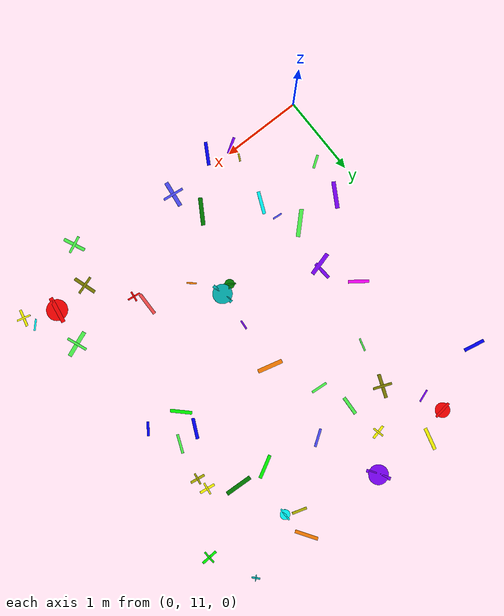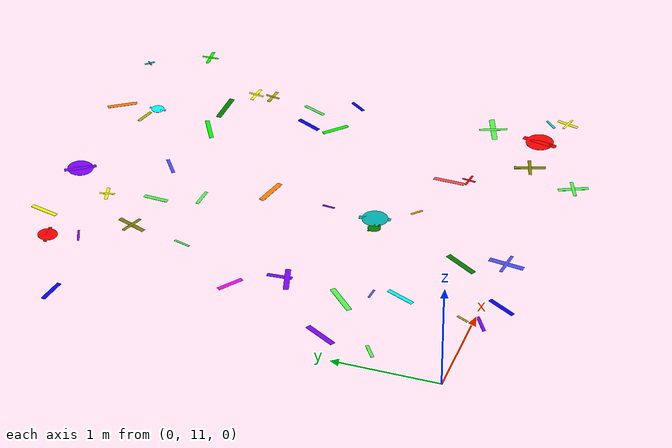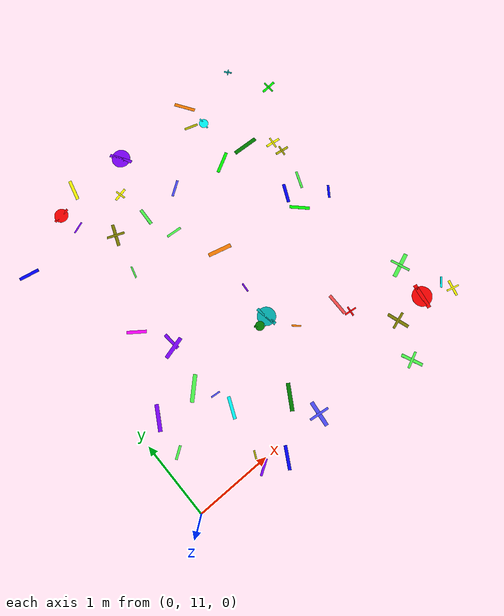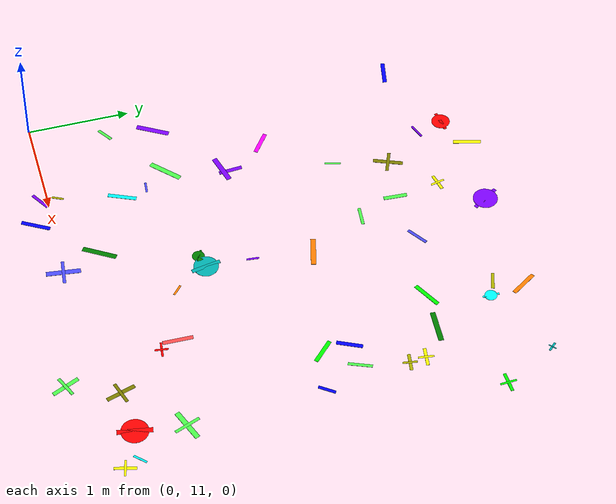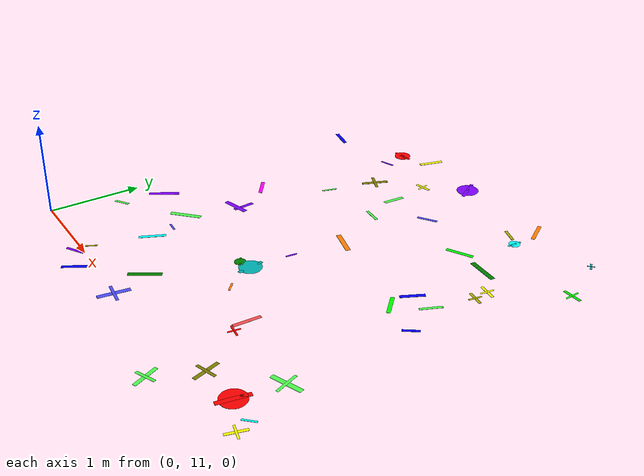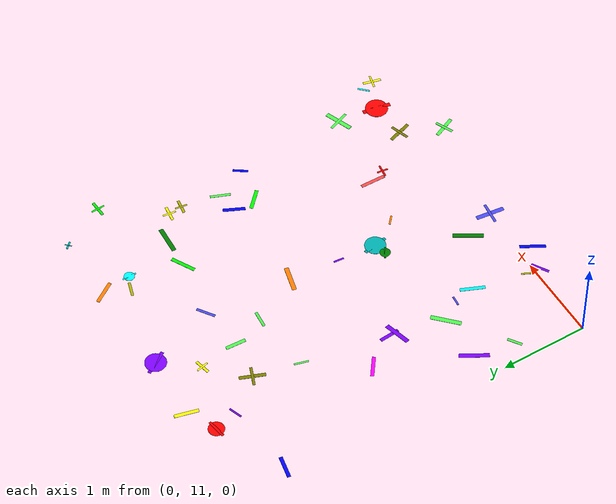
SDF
<sdf version="1.6">
 <world name="default">
  <model name="letter_R_1184">
   <static>true</static>
   <pose>0.23 11.72 0.005 0 0 3.740</pose>
   <link name="link">
    <visual name="visual">
     <geometry><box><size>0.17 0.03 0.002</size></box></geometry>
     <material>
      <ambient>0.3 1.0 0.3 1</ambient>
      <diffuse>0.3 1.0 0.3 1</diffuse>
      <specular>0.1 0.1 0.1 1</specular>
     </material>
    </visual>
   </link>
  </model>
  <model name="letter_K_1185">
   <static>true</static>
   <pose>0.30 12.19 0.012 0 0 1.046</pose>
   <link name="link">
    <visual name="visual">
     <geometry><box><size>0.33 0.05 0.002</size></box></geometry>
     <material>
      <ambient>0.5 0.0 1.0 1</ambient>
      <diffuse>0.5 0.0 1.0 1</diffuse>
      <specular>0.1 0.1 0.1 1</specular>
     </material>
    </visual>
   </link>
  </model>
  <model name="letter_R_1191">
   <static>true</static>
   <pose>0.14 14.63 0.005 0 0 2.949</pose>
   <link name="link">
    <visual name="visual">
     <geometry><box><size>0.26 0.04 0.002</size></box></geometry>
     <material>
      <ambient>0.0 0.0 1.0 1</ambient>
      <diffuse>0.0 0.0 1.0 1</diffuse>
      <specular>0.1 0.1 0.1 1</specular>
     </material>
    </visual>
   </link>
  </model>
  <model name="letter_S_1237">
   <static>true</static>
   <pose>0.91 10.93 0.006 0 0 0.553</pose>
   <link name="link">
    <visual name="visual">
     <geometry><box><size>0.21 0.03 0.002</size></box></geometry>
     <material>
      <ambient>0.5 0.0 1.0 1</ambient>
      <diffuse>0.5 0.0 1.0 1</diffuse>
      <specular>0.1 0.1 0.1 1</specular>
     </material>
    </visual>
   </link>
  </model>
  <model name="letter_W_1238">
   <static>true</static>
   <pose>1.20 10.83 0.005 0 0 1.048</pose>
   <link name="link">
    <visual name="visual">
     <geometry><box><size>0.29 0.04 0.002</size></box></geometry>
     <material>
      <ambient>0.0 0.0 1.0 1</ambient>
      <diffuse>0.0 0.0 1.0 1</diffuse>
      <specular>0.1 0.1 0.1 1</specular>
     </material>
    </visual>
   </link>
  </model>
  <model name="letter_B_1239">
   <static>true</static>
   <pose>0.92 11.10 0.012 0 0 4.268</pose>
   <link name="link">
    <visual name="visual">
     <geometry><box><size>0.12 0.02 0.002</size></box></geometry>
     <material>
      <ambient>0.7 0.7 0.0 1</ambient>
      <diffuse>0.7 0.7 0.0 1</diffuse>
      <specular>0.1 0.1 0.1 1</specular>
     </material>
    </visual>
   </link>
  </model>
  <model name="letter_Y_1240">
   <static>true</static>
   <pose>1.06 11.71 0.004 0 0 1.162</pose>
   <link name="link">
    <visual name="visual">
     <geometry><box><size>0.28 0.04 0.002</size></box></geometry>
     <material>
      <ambient>0.0 1.0 1.0 1</ambient>
      <diffuse>0.0 1.0 1.0 1</diffuse>
      <specular>0.1 0.1 0.1 1</specular>
     </material>
    </visual>
   </link>
  </model>
  <model name="letter_W_1241">
   <static>true</static>
   <pose>0.85 12.19 0.008 0 0 0.771</pose>
   <link name="link">
    <visual name="visual">
     <geometry><box><size>0.34 0.05 0.002</size></box></geometry>
     <material>
      <ambient>0.3 1.0 0.3 1</ambient>
      <diffuse>0.3 1.0 0.3 1</diffuse>
      <specular>0.1 0.1 0.1 1</specular>
     </material>
    </visual>
   </link>
  </model>
  <model name="letter_W_1242">
   <static>true</static>
   <pose>1.01 11.96 0.012 0 0 3.045</pose>
   <link name="link">
    <visual name="visual">
     <geometry><box><size>0.12 0.02 0.002</size></box></geometry>
     <material>
      <ambient>0.3 0.3 1.0 1</ambient>
      <diffuse>0.3 0.3 1.0 1</diffuse>
      <specular>0.1 0.1 0.1 1</specular>
     </material>
    </visual>
   </link>
  </model>
  <model name="letter_U_1243">
   <static>true</static>
   <pose>0.74 13.18 0.011 0 0 5.647</pose>
   <link name="link">
    <visual name="visual">
     <geometry><box><size>0.25 0.04 0.002</size></box></geometry>
     <material>
      <ambient>1.0 0.0 1.0 1</ambient>
      <diffuse>1.0 0.0 1.0 1</diffuse>
      <specular>0.1 0.1 0.1 1</specular>
     </material>
    </visual>
   </link>
  </model>
  <model name="letter_R_1244">
   <static>true</static>
   <pose>1.00 12.81 0.003 0 0 1.650</pose>
   <link name="link">
    <visual name="visual">
     <geometry><box><size>0.23 0.04 0.002</size></box></geometry>
     <material>
      <ambient>0.5 0.0 1.0 1</ambient>
      <diffuse>0.5 0.0 1.0 1</diffuse>
      <specular>0.1 0.1 0.1 1</specular>
     </material>
    </visual>
   </link>
  </model>
  <model name="letter_B_1245">
   <static>true</static>
   <pose>0.97 12.73 0.010 0 0 3.407</pose>
   <link name="link">
    <visual name="visual">
     <geometry><box><size>0.30 0.05 0.002</size></box></geometry>
     <material>
      <ambient>0.5 0.0 1.0 1</ambient>
      <diffuse>0.5 0.0 1.0 1</diffuse>
      <specular>0.1 0.1 0.1 1</specular>
     </material>
    </visual>
   </link>
  </model>
  <model name="letter_P_1246">
   <static>true</static>
   <pose>1.18 13.80 0.009 0 0 1.302</pose>
   <link name="link">
    <visual name="visual">
     <geometry><box><size>0.16 0.02 0.002</size></box></geometry>
     <material>
      <ambient>0.3 1.0 0.3 1</ambient>
      <diffuse>0.3 1.0 0.3 1</diffuse>
      <specular>0.1 0.1 0.1 1</specular>
     </material>
    </visual>
   </link>
  </model>
  <model name="letter_L_1247">
   <static>true</static>
   <pose>1.30 14.33 0.007 0 0 1.194</pose>
   <link name="link">
    <visual name="visual">
     <geometry><box><size>0.29 0.04 0.002</size></box></geometry>
     <material>
      <ambient>0.5 0.5 0.0 1</ambient>
      <diffuse>0.5 0.5 0.0 1</diffuse>
      <specular>0.1 0.1 0.1 1</specular>
     </material>
    </visual>
    <visual name="visual2">
     <pose>0 0 0.001 0 0 1.57</pose>
     <geometry><box><size>0.23 0.03 0.001</size></box></geometry>
     <material><ambient>0.5 0.5 0.0 1</ambient><diffuse>0.5 0.5 0.0 1</diffuse></material>
    </visual>
   </link>
  </model>
  <model name="letter_U_1248">
   <static>true</static>
   <pose>1.25 15.16 0.008 0 0 4.463</pose>
   <link name="link">
    <visual name="visual">
     <geometry><box><size>0.27 0.04 0.002</size></box></geometry>
     <material>
      <ambient>1.0 1.0 0.0 1</ambient>
      <diffuse>1.0 1.0 0.0 1</diffuse>
      <specular>0.1 0.1 0.1 1</specular>
     </material>
    </visual>
   </link>
  </model>
  <model name="letter_J_1249">
   <static>true</static>
   <pose>0.99 14.72 0.008 0 0 3.491</pose>
   <link name="link">
    <visual name="visual">
     <geometry><box><size>0.16 0.02 0.002</size></box></geometry>
     <material>
      <ambient>0.5 0.0 1.0 1</ambient>
      <diffuse>0.5 0.0 1.0 1</diffuse>
      <specular>0.1 0.1 0.1 1</specular>
     </material>
    </visual>
   </link>
  </model>
  <model name="letter_O_1250">
   <static>true</static>
   <pose>0.92 14.99 0.004 0 0 3.297</pose>
   <link name="link">
    <visual name="visual">
     <geometry><box><size>0.22 0.03 0.002</size></box></geometry>
     <material>
      <ambient>1.0 0.0 0.0 1</ambient>
      <diffuse>1.0 0.0 0.0 1</diffuse>
      <specular>0.1 0.1 0.1 1</specular>
     </material>
    </visual>
    <visual name="visual2">
     <geometry><cylinder><radius>0.09</radius><length>0.002</length></cylinder></geometry>
     <material><ambient>1.0 0.0 0.0 1</ambient><diffuse>1.0 0.0 0.0 1</diffuse></material>
    </visual>
   </link>
  </model>
  <model name="letter_H_1302">
   <static>true</static>
   <pose>1.83 10.97 0.004 0 0 1.450</pose>
   <link name="link">
    <visual name="visual">
     <geometry><box><size>0.33 0.05 0.002</size></box></geometry>
     <material>
      <ambient>0.3 0.3 1.0 1</ambient>
      <diffuse>0.3 0.3 1.0 1</diffuse>
      <specular>0.1 0.1 0.1 1</specular>
     </material>
    </visual>
    <visual name="visual2">
     <pose>0 0 0.001 0 0 1.57</pose>
     <geometry><box><size>0.26 0.03 0.001</size></box></geometry>
     <material><ambient>0.3 0.3 1.0 1</ambient><diffuse>0.3 0.3 1.0 1</diffuse></material>
    </visual>
   </link>
  </model>
  <model name="letter_U_1303">
   <static>true</static>
   <pose>1.69 11.35 0.009 0 0 4.161</pose>
   <link name="link">
    <visual name="visual">
     <geometry><box><size>0.34 0.05 0.002</size></box></geometry>
     <material>
      <ambient>0.0 0.5 0.0 1</ambient>
      <diffuse>0.0 0.5 0.0 1</diffuse>
      <specular>0.1 0.1 0.1 1</specular>
     </material>
    </visual>
   </link>
  </model>
  <model name="letter_Q_1304">
   <static>true</static>
   <pose>2.11 12.29 0.006 0 0 1.752</pose>
   <link name="link">
    <visual name="visual">
     <geometry><box><size>0.29 0.04 0.002</size></box></geometry>
     <material>
      <ambient>0.0 0.7 0.7 1</ambient>
      <diffuse>0.0 0.7 0.7 1</diffuse>
      <specular>0.1 0.1 0.1 1</specular>
     </material>
    </visual>
    <visual name="visual2">
     <geometry><cylinder><radius>0.12</radius><length>0.002</length></cylinder></geometry>
     <material><ambient>0.0 0.7 0.7 1</ambient><diffuse>0.0 0.7 0.7 1</diffuse></material>
    </visual>
   </link>
  </model>
  <model name="letter_O_1305">
   <static>true</static>
   <pose>1.97 12.25 0.006 0 0 5.721</pose>
   <link name="link">
    <visual name="visual">
     <geometry><box><size>0.15 0.02 0.002</size></box></geometry>
     <material>
      <ambient>0.0 0.5 0.0 1</ambient>
      <diffuse>0.0 0.5 0.0 1</diffuse>
      <specular>0.1 0.1 0.1 1</specular>
     </material>
    </visual>
    <visual name="visual2">
     <geometry><cylinder><radius>0.06</radius><length>0.002</length></cylinder></geometry>
     <material><ambient>0.0 0.5 0.0 1</ambient><diffuse>0.0 0.5 0.0 1</diffuse></material>
    </visual>
   </link>
  </model>
  <model name="letter_K_1306">
   <static>true</static>
   <pose>2.32 11.96 0.009 0 0 2.410</pose>
   <link name="link">
    <visual name="visual">
     <geometry><box><size>0.12 0.02 0.002</size></box></geometry>
     <material>
      <ambient>1.0 0.5 0.0 1</ambient>
      <diffuse>1.0 0.5 0.0 1</diffuse>
      <specular>0.1 0.1 0.1 1</specular>
     </material>
    </visual>
   </link>
  </model>
  <model name="letter_P_1307">
   <static>true</static>
   <pose>2.14 12.74 0.013 0 0 1.482</pose>
   <link name="link">
    <visual name="visual">
     <geometry><box><size>0.12 0.02 0.002</size></box></geometry>
     <material>
      <ambient>0.5 0.0 1.0 1</ambient>
      <diffuse>0.5 0.0 1.0 1</diffuse>
      <specular>0.1 0.1 0.1 1</specular>
     </material>
    </visual>
   </link>
  </model>
  <model name="letter_U_1308">
   <static>true</static>
   <pose>2.20 13.32 0.005 0 0 2.891</pose>
   <link name="link">
    <visual name="visual">
     <geometry><box><size>0.31 0.05 0.002</size></box></geometry>
     <material>
      <ambient>1.0 0.5 0.0 1</ambient>
      <diffuse>1.0 0.5 0.0 1</diffuse>
      <specular>0.1 0.1 0.1 1</specular>
     </material>
    </visual>
   </link>
  </model>
  <model name="letter_B_1309">
   <static>true</static>
   <pose>1.75 14.27 0.012 0 0 4.661</pose>
   <link name="link">
    <visual name="visual">
     <geometry><box><size>0.23 0.04 0.002</size></box></geometry>
     <material>
      <ambient>0.3 1.0 0.3 1</ambient>
      <diffuse>0.3 1.0 0.3 1</diffuse>
      <specular>0.1 0.1 0.1 1</specular>
     </material>
    </visual>
   </link>
  </model>
  <model name="letter_D_1310">
   <static>true</static>
   <pose>1.90 13.88 0.010 0 0 6.199</pose>
   <link name="link">
    <visual name="visual">
     <geometry><box><size>0.20 0.03 0.002</size></box></geometry>
     <material>
      <ambient>0.3 1.0 0.3 1</ambient>
      <diffuse>0.3 1.0 0.3 1</diffuse>
      <specular>0.1 0.1 0.1 1</specular>
     </material>
    </visual>
   </link>
  </model>
  <model name="letter_K_1311">
   <static>true</static>
   <pose>2.28 14.33 0.011 0 0 3.743</pose>
   <link name="link">
    <visual name="visual">
     <geometry><box><size>0.22 0.03 0.002</size></box></geometry>
     <material>
      <ambient>0.3 0.3 1.0 1</ambient>
      <diffuse>0.3 0.3 1.0 1</diffuse>
      <specular>0.1 0.1 0.1 1</specular>
     </material>
    </visual>
   </link>
  </model>
  <model name="letter_H_1312">
   <static>true</static>
   <pose>1.68 14.72 0.010 0 0 3.371</pose>
   <link name="link">
    <visual name="visual">
     <geometry><box><size>0.18 0.03 0.002</size></box></geometry>
     <material>
      <ambient>1.0 1.0 0.0 1</ambient>
      <diffuse>1.0 1.0 0.0 1</diffuse>
      <specular>0.1 0.1 0.1 1</specular>
     </material>
    </visual>
    <visual name="visual2">
     <pose>0 0 0.001 0 0 1.57</pose>
     <geometry><box><size>0.14 0.02 0.001</size></box></geometry>
     <material><ambient>1.0 1.0 0.0 1</ambient><diffuse>1.0 1.0 0.0 1</diffuse></material>
    </visual>
   </link>
  </model>
  <model name="letter_Q_1313">
   <static>true</static>
   <pose>1.99 15.11 0.003 0 0 5.284</pose>
   <link name="link">
    <visual name="visual">
     <geometry><box><size>0.30 0.04 0.002</size></box></geometry>
     <material>
      <ambient>0.5 0.0 1.0 1</ambient>
      <diffuse>0.5 0.0 1.0 1</diffuse>
      <specular>0.1 0.1 0.1 1</specular>
     </material>
    </visual>
    <visual name="visual2">
     <geometry><cylinder><radius>0.12</radius><length>0.002</length></cylinder></geometry>
     <material><ambient>0.5 0.0 1.0 1</ambient><diffuse>0.5 0.0 1.0 1</diffuse></material>
    </visual>
   </link>
  </model>
  <model name="letter_A_1374">
   <static>true</static>
   <pose>3.14 10.72 0.008 0 0 1.993</pose>
   <link name="link">
    <visual name="visual">
     <geometry><box><size>0.28 0.04 0.002</size></box></geometry>
     <material>
      <ambient>0.3 1.0 0.3 1</ambient>
      <diffuse>0.3 1.0 0.3 1</diffuse>
      <specular>0.1 0.1 0.1 1</specular>
     </material>
    </visual>
    <visual name="visual2">
     <pose>0 0 0.001 0 0 1.57</pose>
     <geometry><box><size>0.22 0.03 0.001</size></box></geometry>
     <material><ambient>0.3 1.0 0.3 1</ambient><diffuse>0.3 1.0 0.3 1</diffuse></material>
    </visual>
   </link>
  </model>
  <model name="letter_L_1375">
   <static>true</static>
   <pose>3.34 11.19 0.009 0 0 1.886</pose>
   <link name="link">
    <visual name="visual">
     <geometry><box><size>0.29 0.04 0.002</size></box></geometry>
     <material>
      <ambient>0.5 0.5 0.0 1</ambient>
      <diffuse>0.5 0.5 0.0 1</diffuse>
      <specular>0.1 0.1 0.1 1</specular>
     </material>
    </visual>
    <visual name="visual2">
     <pose>0 0 0.001 0 0 1.57</pose>
     <geometry><box><size>0.23 0.03 0.001</size></box></geometry>
     <material><ambient>0.5 0.5 0.0 1</ambient><diffuse>0.5 0.5 0.0 1</diffuse></material>
    </visual>
   </link>
  </model>
  <model name="letter_Z_1376">
   <static>true</static>
   <pose>2.89 11.83 0.008 0 0 4.696</pose>
   <link name="link">
    <visual name="visual">
     <geometry><box><size>0.29 0.04 0.002</size></box></geometry>
     <material>
      <ambient>1.0 0.3 0.3 1</ambient>
      <diffuse>1.0 0.3 0.3 1</diffuse>
      <specular>0.1 0.1 0.1 1</specular>
     </material>
    </visual>
   </link>
  </model>
  <model name="letter_L_1377">
   <static>true</static>
   <pose>2.96 11.66 0.010 0 0 3.016</pose>
   <link name="link">
    <visual name="visual">
     <geometry><box><size>0.16 0.02 0.002</size></box></geometry>
     <material>
      <ambient>1.0 0.0 0.0 1</ambient>
      <diffuse>1.0 0.0 0.0 1</diffuse>
      <specular>0.1 0.1 0.1 1</specular>
     </material>
    </visual>
    <visual name="visual2">
     <pose>0 0 0.001 0 0 1.57</pose>
     <geometry><box><size>0.13 0.02 0.001</size></box></geometry>
     <material><ambient>1.0 0.0 0.0 1</ambient><diffuse>1.0 0.0 0.0 1</diffuse></material>
    </visual>
   </link>
  </model>
  <model name="letter_K_1378">
   <static>true</static>
   <pose>3.36 13.09 0.005 0 0 2.369</pose>
   <link name="link">
    <visual name="visual">
     <geometry><box><size>0.26 0.04 0.002</size></box></geometry>
     <material>
      <ambient>0.0 1.0 0.0 1</ambient>
      <diffuse>0.0 1.0 0.0 1</diffuse>
      <specular>0.1 0.1 0.1 1</specular>
     </material>
    </visual>
   </link>
  </model>
  <model name="letter_K_1379">
   <static>true</static>
   <pose>3.35 13.35 0.008 0 0 1.130</pose>
   <link name="link">
    <visual name="visual">
     <geometry><box><size>0.25 0.04 0.002</size></box></geometry>
     <material>
      <ambient>0.0 0.0 1.0 1</ambient>
      <diffuse>0.0 0.0 1.0 1</diffuse>
      <specular>0.1 0.1 0.1 1</specular>
     </material>
    </visual>
   </link>
  </model>
  <model name="letter_D_1380">
   <static>true</static>
   <pose>3.36 14.19 0.008 0 0 6.232</pose>
   <link name="link">
    <visual name="visual">
     <geometry><box><size>0.33 0.05 0.002</size></box></geometry>
     <material>
      <ambient>0.0 0.5 0.0 1</ambient>
      <diffuse>0.0 0.5 0.0 1</diffuse>
      <specular>0.1 0.1 0.1 1</specular>
     </material>
    </visual>
   </link>
  </model>
  <model name="letter_N_1381">
   <static>true</static>
   <pose>2.98 14.21 0.004 0 0 0.496</pose>
   <link name="link">
    <visual name="visual">
     <geometry><box><size>0.29 0.04 0.002</size></box></geometry>
     <material>
      <ambient>0.0 1.0 0.0 1</ambient>
      <diffuse>0.0 1.0 0.0 1</diffuse>
      <specular>0.1 0.1 0.1 1</specular>
     </material>
    </visual>
   </link>
  </model>
  <model name="letter_G_1382">
   <static>true</static>
   <pose>3.14 14.79 0.007 0 0 4.703</pose>
   <link name="link">
    <visual name="visual">
     <geometry><box><size>0.16 0.02 0.002</size></box></geometry>
     <material>
      <ambient>0.0 1.0 1.0 1</ambient>
      <diffuse>0.0 1.0 1.0 1</diffuse>
      <specular>0.1 0.1 0.1 1</specular>
     </material>
    </visual>
    <visual name="visual2">
     <geometry><cylinder><radius>0.06</radius><length>0.002</length></cylinder></geometry>
     <material><ambient>0.0 1.0 1.0 1</ambient><diffuse>0.0 1.0 1.0 1</diffuse></material>
    </visual>
   </link>
  </model>
  <model name="letter_Y_1383">
   <static>true</static>
   <pose>3.09 15.13 0.009 0 0 2.153</pose>
   <link name="link">
    <visual name="visual">
     <geometry><box><size>0.28 0.04 0.002</size></box></geometry>
     <material>
      <ambient>1.0 0.5 0.0 1</ambient>
      <diffuse>1.0 0.5 0.0 1</diffuse>
      <specular>0.1 0.1 0.1 1</specular>
     </material>
    </visual>
   </link>
  </model>
  <model name="letter_U_1384">
   <static>true</static>
   <pose>2.98 14.86 0.006 0 0 5.982</pose>
   <link name="link">
    <visual name="visual">
     <geometry><box><size>0.18 0.03 0.002</size></box></geometry>
     <material>
      <ambient>0.7 0.7 0.0 1</ambient>
      <diffuse>0.7 0.7 0.0 1</diffuse>
      <specular>0.1 0.1 0.1 1</specular>
     </material>
    </visual>
   </link>
  </model>
  <model name="letter_Q_1448">
   <static>true</static>
   <pose>3.78 11.22 0.006 0 0 1.406</pose>
   <link name="link">
    <visual name="visual">
     <geometry><box><size>0.33 0.05 0.002</size></box></geometry>
     <material>
      <ambient>1.0 0.0 0.0 1</ambient>
      <diffuse>1.0 0.0 0.0 1</diffuse>
      <specular>0.1 0.1 0.1 1</specular>
     </material>
    </visual>
    <visual name="visual2">
     <geometry><cylinder><radius>0.13</radius><length>0.002</length></cylinder></geometry>
     <material><ambient>1.0 0.0 0.0 1</ambient><diffuse>1.0 0.0 0.0 1</diffuse></material>
    </visual>
   </link>
  </model>
  <model name="letter_R_1449">
   <static>true</static>
   <pose>4.09 11.20 0.012 0 0 0.806</pose>
   <link name="link">
    <visual name="visual">
     <geometry><box><size>0.14 0.02 0.002</size></box></geometry>
     <material>
      <ambient>0.0 1.0 1.0 1</ambient>
      <diffuse>0.0 1.0 1.0 1</diffuse>
      <specular>0.1 0.1 0.1 1</specular>
     </material>
    </visual>
   </link>
  </model>
  <model name="letter_H_1450">
   <static>true</static>
   <pose>4.15 11.05 0.009 0 0 4.462</pose>
   <link name="link">
    <visual name="visual">
     <geometry><box><size>0.21 0.03 0.002</size></box></geometry>
     <material>
      <ambient>1.0 1.0 0.0 1</ambient>
      <diffuse>1.0 1.0 0.0 1</diffuse>
      <specular>0.1 0.1 0.1 1</specular>
     </material>
    </visual>
    <visual name="visual2">
     <pose>0 0 0.001 0 0 1.57</pose>
     <geometry><box><size>0.17 0.02 0.001</size></box></geometry>
     <material><ambient>1.0 1.0 0.0 1</ambient><diffuse>1.0 1.0 0.0 1</diffuse></material>
    </visual>
   </link>
  </model>
  <model name="letter_A_1452">
   <static>true</static>
   <pose>3.84 11.69 0.006 0 0 3.514</pose>
   <link name="link">
    <visual name="visual">
     <geometry><box><size>0.33 0.05 0.002</size></box></geometry>
     <material>
      <ambient>0.3 1.0 0.3 1</ambient>
      <diffuse>0.3 1.0 0.3 1</diffuse>
      <specular>0.1 0.1 0.1 1</specular>
     </material>
    </visual>
    <visual name="visual2">
     <pose>0 0 0.001 0 0 1.57</pose>
     <geometry><box><size>0.26 0.03 0.001</size></box></geometry>
     <material><ambient>0.3 1.0 0.3 1</ambient><diffuse>0.3 1.0 0.3 1</diffuse></material>
    </visual>
   </link>
  </model>
  <model name="letter_M_1453">
   <static>true</static>
   <pose>3.60 13.38 0.008 0 0 1.187</pose>
   <link name="link">
    <visual name="visual">
     <geometry><box><size>0.23 0.03 0.002</size></box></geometry>
     <material>
      <ambient>0.3 1.0 0.3 1</ambient>
      <diffuse>0.3 1.0 0.3 1</diffuse>
      <specular>0.1 0.1 0.1 1</specular>
     </material>
    </visual>
   </link>
  </model>
  <model name="letter_B_1454">
   <static>true</static>
   <pose>3.79 13.01 0.010 0 0 0.951</pose>
   <link name="link">
    <visual name="visual">
     <geometry><box><size>0.17 0.03 0.002</size></box></geometry>
     <material>
      <ambient>0.0 0.0 1.0 1</ambient>
      <diffuse>0.0 0.0 1.0 1</diffuse>
      <specular>0.1 0.1 0.1 1</specular>
     </material>
    </visual>
   </link>
  </model>
  <model name="letter_A_1455">
   <static>true</static>
   <pose>3.69 13.83 0.008 0 0 6.140</pose>
   <link name="link">
    <visual name="visual">
     <geometry><box><size>0.18 0.03 0.002</size></box></geometry>
     <material>
      <ambient>0.7 0.7 0.0 1</ambient>
      <diffuse>0.7 0.7 0.0 1</diffuse>
      <specular>0.1 0.1 0.1 1</specular>
     </material>
    </visual>
    <visual name="visual2">
     <pose>0 0 0.001 0 0 1.57</pose>
     <geometry><box><size>0.14 0.02 0.001</size></box></geometry>
     <material><ambient>0.7 0.7 0.0 1</ambient><diffuse>0.7 0.7 0.0 1</diffuse></material>
    </visual>
   </link>
  </model>
  <model name="letter_I_1456">
   <static>true</static>
   <pose>3.67 13.99 0.011 0 0 3.016</pose>
   <link name="link">
    <visual name="visual">
     <geometry><box><size>0.19 0.03 0.002</size></box></geometry>
     <material>
      <ambient>1.0 1.0 0.0 1</ambient>
      <diffuse>1.0 1.0 0.0 1</diffuse>
      <specular>0.1 0.1 0.1 1</specular>
     </material>
    </visual>
    <visual name="visual2">
     <pose>0 0 0.001 0 0 1.57</pose>
     <geometry><box><size>0.15 0.02 0.001</size></box></geometry>
     <material><ambient>1.0 1.0 0.0 1</ambient><diffuse>1.0 1.0 0.0 1</diffuse></material>
    </visual>
   </link>
  </model>
  <model name="letter_L_1457">
   <static>true</static>
   <pose>3.86 15.15 0.008 0 0 5.456</pose>
   <link name="link">
    <visual name="visual">
     <geometry><box><size>0.10 0.02 0.002</size></box></geometry>
     <material>
      <ambient>0.0 0.7 0.7 1</ambient>
      <diffuse>0.0 0.7 0.7 1</diffuse>
      <specular>0.1 0.1 0.1 1</specular>
     </material>
    </visual>
    <visual name="visual2">
     <pose>0 0 0.001 0 0 1.57</pose>
     <geometry><box><size>0.08 0.01 0.001</size></box></geometry>
     <material><ambient>0.0 0.7 0.7 1</ambient><diffuse>0.0 0.7 0.7 1</diffuse></material>
    </visual>
   </link>
  </model>
  <model name="letter_L_1458">
   <static>true</static>
   <pose>4.14 14.63 0.011 0 0 3.202</pose>
   <link name="link">
    <visual name="visual">
     <geometry><box><size>0.20 0.03 0.002</size></box></geometry>
     <material>
      <ambient>0.0 1.0 0.0 1</ambient>
      <diffuse>0.0 1.0 0.0 1</diffuse>
      <specular>0.1 0.1 0.1 1</specular>
     </material>
    </visual>
    <visual name="visual2">
     <pose>0 0 0.001 0 0 1.57</pose>
     <geometry><box><size>0.16 0.02 0.001</size></box></geometry>
     <material><ambient>0.0 1.0 0.0 1</ambient><diffuse>0.0 1.0 0.0 1</diffuse></material>
    </visual>
   </link>
  </model>
 </world>
</sdf>
